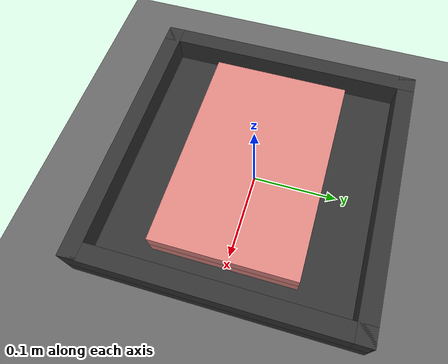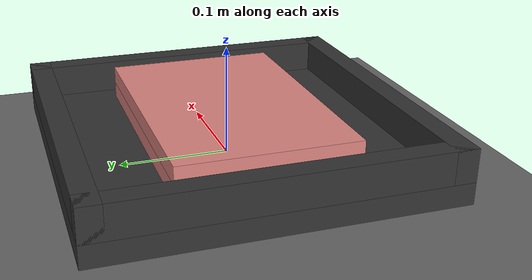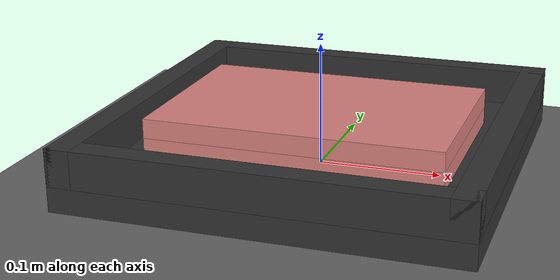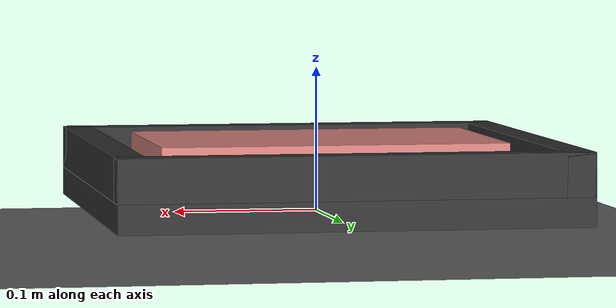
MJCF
<mujoco model="perfect_steak">
  <compiler angle="degree" coordinate="local"/>
  <option timestep="0.01" gravity="0 0 -9.81" integrator="RK4"/>

  <default>
    <geom rgba="0.2 0.2 0.2 1.0" friction="0.6 0.005 0.0001"/>
  </default>

  <asset>
    <texture type="skybox" builtin="gradient" rgb1="0.8 0.8 0.85" rgb2="0.4 0.45 0.5" width="256" height="256"/>
    <texture type="2d" name="pan_tex" builtin="flat" width="256" height="256" rgb1="0.78 0.79 0.82" mark="edge" markrgb="0.55 0.56 0.6"/>
    <material name="pan_mat" texture="pan_tex" specular="1.2" shininess="1.2" reflectance="0.35"/>
    <!-- Neutral material so geom RGBA directly reflects browning palette -->
    <material name="steak_mat" specular="0.05" shininess="0.05" rgba="1 1 1 1"/>
  </asset>

  <worldbody>
    <light name="overhead_light" pos="0 0 0.6" dir="0 0 -1" diffuse="0.9 0.9 0.9" specular="0.6 0.6 0.6" cutoff="100" exponent="5"/>
    <light name="rim_light" pos="-0.4 0.4 0.35" dir="0 0 -1" diffuse="0.4 0.4 0.45" specular="0.9 0.9 0.95" cutoff="80" exponent="10"/>
    <geom name="table" type="plane" size="1 1 0.02" pos="0 0 -0.02" rgba="0.4 0.4 0.4 1"/>

    <body name="pan" pos="0 0 0.0">
      <geom name="pan_base" type="box" size="0.16 0.16 0.01" pos="0 0 0.01" material="pan_mat"/>
      <geom name="pan_wall_north" type="box" size="0.16 0.01 0.015" pos="0 0.15 0.035" material="pan_mat"/>
      <geom name="pan_wall_south" type="box" size="0.16 0.01 0.015" pos="0 -0.15 0.035" material="pan_mat"/>
      <geom name="pan_wall_east" type="box" size="0.01 0.16 0.015" pos="0.15 0 0.035" material="pan_mat"/>
      <geom name="pan_wall_west" type="box" size="0.01 0.16 0.015" pos="-0.15 0 0.035" material="pan_mat"/>
      <geom name="burner" type="cylinder" size="0.12 0.005" pos="0 0 0.005" rgba="0.7 0.1 0.05 0.7"/>
    </body>

    <body name="steak" pos="0 0 0.035">
      <joint name="steak_slide" type="slide" axis="0 0 1" damping="2"/>
      <joint name="steak_yaw" type="hinge" axis="0 0 1" damping="0.2"/>
      <!-- thickness approximates 1.25in (0.03175 m) -->
      <geom name="steak_core" type="box" size="0.12 0.08 0.015875" rgba="0 0 0 0"/>
      <geom name="steak_bottom" type="box" size="0.12 0.08 0.0079375" pos="0 0 -0.0079375" material="steak_mat" rgba="0.86 0.52 0.5 1"/>
      <geom name="steak_top" type="box" size="0.12 0.08 0.0079375" pos="0 0 0.0079375" material="steak_mat" rgba="0.86 0.52 0.5 1"/>
      <site name="steak_indicator" pos="0 0 0.02" size="0.001"/>
    </body>
  </worldbody>
</mujoco>
